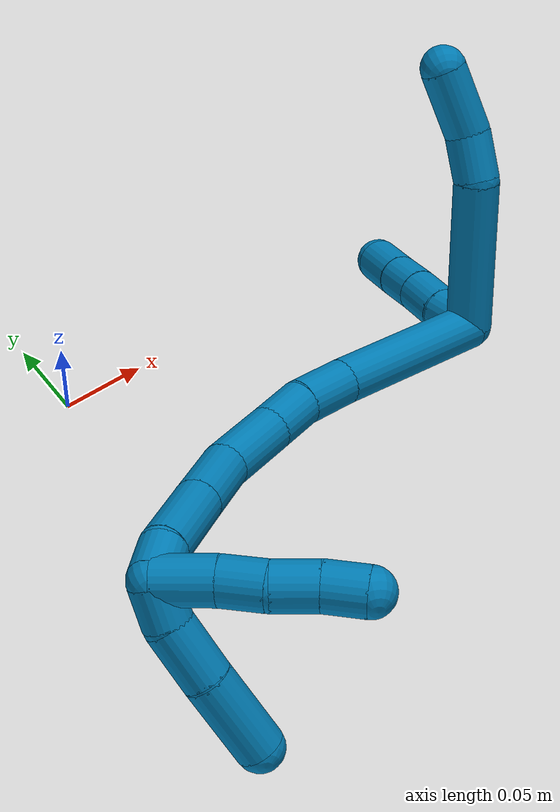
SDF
<sdf version="1.7">
 <world name="default">
  <model name="9">
   <static>0</static>
   <link name="9">
    <collision name="collision-cylinder-e_1_2_8">
     <pose>0.007394 0.040237 -0.01309 -1.88532 0.173003 -0.23768</pose>
     <geometry><cylinder><radius>0.0125</radius><length>0.085908</length></cylinder></geometry>
     <surface>
      <friction><ode><mu>1.16</mu><mu2>1.16</mu2><slip1>0</slip1><slip2>0</slip2></ode></friction>
      <contact><ode><kp>1e+06</kp><kd>1</kd><max_vel>0</max_vel><min_depth>0.001</min_depth></ode></contact>
     </surface>
    </collision>
    <visual name="visual-cylinder-e_1_2_8">
     <pose>0.007394 0.040237 -0.01309 -1.88532 0.173003 -0.23768</pose>
     <geometry><cylinder><radius>0.0125</radius><length>0.085908</length></cylinder></geometry>
     <material><ambient>0 0.490196 0.709804 1</ambient></material>
    </visual>
    <collision name="collision-cylinder-e_2_8_9">
     <pose>0.014872 0.091122 -0.033821 -2.19325 0.00638 -0.012431</pose>
     <geometry><cylinder><radius>0.0125</radius><length>0.026212</length></cylinder></geometry>
     <surface>
      <friction><ode><mu>1.16</mu><mu2>1.16</mu2><slip1>0</slip1><slip2>0</slip2></ode></friction>
      <contact><ode><kp>1e+06</kp><kd>1</kd><max_vel>0</max_vel><min_depth>0.001</min_depth></ode></contact>
     </surface>
    </collision>
    <visual name="visual-cylinder-e_2_8_9">
     <pose>0.014872 0.091122 -0.033821 -2.19325 0.00638 -0.012431</pose>
     <geometry><cylinder><radius>0.0125</radius><length>0.026212</length></cylinder></geometry>
     <material><ambient>0 0.490196 0.709804 1</ambient></material>
    </visual>
    <collision name="collision-cylinder-e_3_9_6">
     <pose>0.011197 0.118496 -0.049514 -2.01946 -0.199771 0.316283</pose>
     <geometry><cylinder><radius>0.0125</radius><length>0.037881</length></cylinder></geometry>
     <surface>
      <friction><ode><mu>1.16</mu><mu2>1.16</mu2><slip1>0</slip1><slip2>0</slip2></ode></friction>
      <contact><ode><kp>1e+06</kp><kd>1</kd><max_vel>0</max_vel><min_depth>0.001</min_depth></ode></contact>
     </surface>
    </collision>
    <visual name="visual-cylinder-e_3_9_6">
     <pose>0.011197 0.118496 -0.049514 -2.01946 -0.199771 0.316283</pose>
     <geometry><cylinder><radius>0.0125</radius><length>0.037881</length></cylinder></geometry>
     <material><ambient>0 0.490196 0.709804 1</ambient></material>
    </visual>
    <collision name="collision-cylinder-e_1_2_10">
     <pose>-0.004761 -0.002393 -0.010988 2.92717 -0.400512 -2.16653</pose>
     <geometry><cylinder><radius>0.0125</radius><length>0.024423</length></cylinder></geometry>
     <surface>
      <friction><ode><mu>1.16</mu><mu2>1.16</mu2><slip1>0</slip1><slip2>0</slip2></ode></friction>
      <contact><ode><kp>1e+06</kp><kd>1</kd><max_vel>0</max_vel><min_depth>0.001</min_depth></ode></contact>
     </surface>
    </collision>
    <visual name="visual-cylinder-e_1_2_10">
     <pose>-0.004761 -0.002393 -0.010988 2.92717 -0.400512 -2.16653</pose>
     <geometry><cylinder><radius>0.0125</radius><length>0.024423</length></cylinder></geometry>
     <material><ambient>0 0.490196 0.709804 1</ambient></material>
    </visual>
    <collision name="collision-cylinder-e_2_10_11">
     <pose>-0.012929 -0.007476 -0.034115 2.92353 -0.267443 -1.7755</pose>
     <geometry><cylinder><radius>0.0125</radius><length>0.025786</length></cylinder></geometry>
     <surface>
      <friction><ode><mu>1.16</mu><mu2>1.16</mu2><slip1>0</slip1><slip2>0</slip2></ode></friction>
      <contact><ode><kp>1e+06</kp><kd>1</kd><max_vel>0</max_vel><min_depth>0.001</min_depth></ode></contact>
     </surface>
    </collision>
    <visual name="visual-cylinder-e_2_10_11">
     <pose>-0.012929 -0.007476 -0.034115 2.92353 -0.267443 -1.7755</pose>
     <geometry><cylinder><radius>0.0125</radius><length>0.025786</length></cylinder></geometry>
     <material><ambient>0 0.490196 0.709804 1</ambient></material>
    </visual>
    <collision name="collision-cylinder-e_3_11_12">
     <pose>-0.019535 -0.012992 -0.056905 2.88218 -0.282494 -1.65699</pose>
     <geometry><cylinder><radius>0.0125</radius><length>0.022944</length></cylinder></geometry>
     <surface>
      <friction><ode><mu>1.16</mu><mu2>1.16</mu2><slip1>0</slip1><slip2>0</slip2></ode></friction>
      <contact><ode><kp>1e+06</kp><kd>1</kd><max_vel>0</max_vel><min_depth>0.001</min_depth></ode></contact>
     </surface>
    </collision>
    <visual name="visual-cylinder-e_3_11_12">
     <pose>-0.019535 -0.012992 -0.056905 2.88218 -0.282494 -1.65699</pose>
     <geometry><cylinder><radius>0.0125</radius><length>0.022944</length></cylinder></geometry>
     <material><ambient>0 0.490196 0.709804 1</ambient></material>
    </visual>
    <collision name="collision-cylinder-e_4_12_5">
     <pose>-0.025925 -0.019409 -0.080087 2.86255 -0.240165 -1.41965</pose>
     <geometry><cylinder><radius>0.0125</radius><length>0.026847</length></cylinder></geometry>
     <surface>
      <friction><ode><mu>1.16</mu><mu2>1.16</mu2><slip1>0</slip1><slip2>0</slip2></ode></friction>
      <contact><ode><kp>1e+06</kp><kd>1</kd><max_vel>0</max_vel><min_depth>0.001</min_depth></ode></contact>
     </surface>
    </collision>
    <visual name="visual-cylinder-e_4_12_5">
     <pose>-0.025925 -0.019409 -0.080087 2.86255 -0.240165 -1.41965</pose>
     <geometry><cylinder><radius>0.0125</radius><length>0.026847</length></cylinder></geometry>
     <material><ambient>0 0.490196 0.709804 1</ambient></material>
    </visual>
    <collision name="collision-cylinder-e_1_2_13">
     <pose>-0.040674 0.011315 0.020652 -0.501233 -1.04599 0.293074</pose>
     <geometry><cylinder><radius>0.0125</radius><length>0.093999</length></cylinder></geometry>
     <surface>
      <friction><ode><mu>1.16</mu><mu2>1.16</mu2><slip1>0</slip1><slip2>0</slip2></ode></friction>
      <contact><ode><kp>1e+06</kp><kd>1</kd><max_vel>0</max_vel><min_depth>0.001</min_depth></ode></contact>
     </surface>
    </collision>
    <visual name="visual-cylinder-e_1_2_13">
     <pose>-0.040674 0.011315 0.020652 -0.501233 -1.04599 0.293074</pose>
     <geometry><cylinder><radius>0.0125</radius><length>0.093999</length></cylinder></geometry>
     <material><ambient>0 0.490196 0.709804 1</ambient></material>
    </visual>
    <collision name="collision-cylinder-e_2_13_14">
     <pose>-0.094148 0.027009 0.049417 -0.4949 -0.946618 0.25733</pose>
     <geometry><cylinder><radius>0.0125</radius><length>0.031548</length></cylinder></geometry>
     <surface>
      <friction><ode><mu>1.16</mu><mu2>1.16</mu2><slip1>0</slip1><slip2>0</slip2></ode></friction>
      <contact><ode><kp>1e+06</kp><kd>1</kd><max_vel>0</max_vel><min_depth>0.001</min_depth></ode></contact>
     </surface>
    </collision>
    <visual name="visual-cylinder-e_2_13_14">
     <pose>-0.094148 0.027009 0.049417 -0.4949 -0.946618 0.25733</pose>
     <geometry><cylinder><radius>0.0125</radius><length>0.031548</length></cylinder></geometry>
     <material><ambient>0 0.490196 0.709804 1</ambient></material>
    </visual>
    <collision name="collision-cylinder-e_3_14_15">
     <pose>-0.116961 0.033691 0.066142 -0.261322 -0.84335 0.11776</pose>
     <geometry><cylinder><radius>0.0125</radius><length>0.026814</length></cylinder></geometry>
     <surface>
      <friction><ode><mu>1.16</mu><mu2>1.16</mu2><slip1>0</slip1><slip2>0</slip2></ode></friction>
      <contact><ode><kp>1e+06</kp><kd>1</kd><max_vel>0</max_vel><min_depth>0.001</min_depth></ode></contact>
     </surface>
    </collision>
    <visual name="visual-cylinder-e_3_14_15">
     <pose>-0.116961 0.033691 0.066142 -0.261322 -0.84335 0.11776</pose>
     <geometry><cylinder><radius>0.0125</radius><length>0.026814</length></cylinder></geometry>
     <material><ambient>0 0.490196 0.709804 1</ambient></material>
    </visual>
    <collision name="collision-cylinder-e_4_15_16">
     <pose>-0.14107 0.041222 0.08843 -0.365143 -0.766435 0.14859</pose>
     <geometry><cylinder><radius>0.0125</radius><length>0.040646</length></cylinder></geometry>
     <surface>
      <friction><ode><mu>1.16</mu><mu2>1.16</mu2><slip1>0</slip1><slip2>0</slip2></ode></friction>
      <contact><ode><kp>1e+06</kp><kd>1</kd><max_vel>0</max_vel><min_depth>0.001</min_depth></ode></contact>
     </surface>
    </collision>
    <visual name="visual-cylinder-e_4_15_16">
     <pose>-0.14107 0.041222 0.08843 -0.365143 -0.766435 0.14859</pose>
     <geometry><cylinder><radius>0.0125</radius><length>0.040646</length></cylinder></geometry>
     <material><ambient>0 0.490196 0.709804 1</ambient></material>
    </visual>
    <collision name="collision-cylinder-e_5_16_17">
     <pose>-0.164345 0.053461 0.117847 -0.418989 -0.489427 0.106088</pose>
     <geometry><cylinder><radius>0.0125</radius><length>0.039048</length></cylinder></geometry>
     <surface>
      <friction><ode><mu>1.16</mu><mu2>1.16</mu2><slip1>0</slip1><slip2>0</slip2></ode></friction>
      <contact><ode><kp>1e+06</kp><kd>1</kd><max_vel>0</max_vel><min_depth>0.001</min_depth></ode></contact>
     </surface>
    </collision>
    <visual name="visual-cylinder-e_5_16_17">
     <pose>-0.164345 0.053461 0.117847 -0.418989 -0.489427 0.106088</pose>
     <geometry><cylinder><radius>0.0125</radius><length>0.039048</length></cylinder></geometry>
     <material><ambient>0 0.490196 0.709804 1</ambient></material>
    </visual>
    <collision name="collision-cylinder-e_6_17_18">
     <pose>-0.184126 0.068976 0.15236 -0.425392 -0.475151 0.104495</pose>
     <geometry><cylinder><radius>0.0125</radius><length>0.046352</length></cylinder></geometry>
     <surface>
      <friction><ode><mu>1.16</mu><mu2>1.16</mu2><slip1>0</slip1><slip2>0</slip2></ode></friction>
      <contact><ode><kp>1e+06</kp><kd>1</kd><max_vel>0</max_vel><min_depth>0.001</min_depth></ode></contact>
     </surface>
    </collision>
    <visual name="visual-cylinder-e_6_17_18">
     <pose>-0.184126 0.068976 0.15236 -0.425392 -0.475151 0.104495</pose>
     <geometry><cylinder><radius>0.0125</radius><length>0.046352</length></cylinder></geometry>
     <material><ambient>0 0.490196 0.709804 1</ambient></material>
    </visual>
    <collision name="collision-cylinder-e_7_18_1">
     <pose>-0.19884 0.079175 0.18097 -0.170521 -0.390755 0.033825</pose>
     <geometry><cylinder><radius>0.0125</radius><length>0.021593</length></cylinder></geometry>
     <surface>
      <friction><ode><mu>1.16</mu><mu2>1.16</mu2><slip1>0</slip1><slip2>0</slip2></ode></friction>
      <contact><ode><kp>1e+06</kp><kd>1</kd><max_vel>0</max_vel><min_depth>0.001</min_depth></ode></contact>
     </surface>
    </collision>
    <visual name="visual-cylinder-e_7_18_1">
     <pose>-0.19884 0.079175 0.18097 -0.170521 -0.390755 0.033825</pose>
     <geometry><cylinder><radius>0.0125</radius><length>0.021593</length></cylinder></geometry>
     <material><ambient>0 0.490196 0.709804 1</ambient></material>
    </visual>
    <collision name="collision-cylinder-e_1_1_19">
     <pose>-0.188265 0.081105 0.195612 -0.049179 1.25432 -0.035647</pose>
     <geometry><cylinder><radius>0.0125</radius><length>0.030911</length></cylinder></geometry>
     <surface>
      <friction><ode><mu>1.16</mu><mu2>1.16</mu2><slip1>0</slip1><slip2>0</slip2></ode></friction>
      <contact><ode><kp>1e+06</kp><kd>1</kd><max_vel>0</max_vel><min_depth>0.001</min_depth></ode></contact>
     </surface>
    </collision>
    <visual name="visual-cylinder-e_1_1_19">
     <pose>-0.188265 0.081105 0.195612 -0.049179 1.25432 -0.035647</pose>
     <geometry><cylinder><radius>0.0125</radius><length>0.030911</length></cylinder></geometry>
     <material><ambient>0 0.490196 0.709804 1</ambient></material>
    </visual>
    <collision name="collision-cylinder-e_2_19_20">
     <pose>-0.163073 0.08135 0.205296 -0.001704 1.13589 -0.001087</pose>
     <geometry><cylinder><radius>0.0125</radius><length>0.023164</length></cylinder></geometry>
     <surface>
      <friction><ode><mu>1.16</mu><mu2>1.16</mu2><slip1>0</slip1><slip2>0</slip2></ode></friction>
      <contact><ode><kp>1e+06</kp><kd>1</kd><max_vel>0</max_vel><min_depth>0.001</min_depth></ode></contact>
     </surface>
    </collision>
    <visual name="visual-cylinder-e_2_19_20">
     <pose>-0.163073 0.08135 0.205296 -0.001704 1.13589 -0.001087</pose>
     <geometry><cylinder><radius>0.0125</radius><length>0.023164</length></cylinder></geometry>
     <material><ambient>0 0.490196 0.709804 1</ambient></material>
    </visual>
    <collision name="collision-cylinder-e_3_20_21">
     <pose>-0.14114 0.080611 0.213039 0.255337 1.31743 0.198073</pose>
     <geometry><cylinder><radius>0.0125</radius><length>0.023611</length></cylinder></geometry>
     <surface>
      <friction><ode><mu>1.16</mu><mu2>1.16</mu2><slip1>0</slip1><slip2>0</slip2></ode></friction>
      <contact><ode><kp>1e+06</kp><kd>1</kd><max_vel>0</max_vel><min_depth>0.001</min_depth></ode></contact>
     </surface>
    </collision>
    <visual name="visual-cylinder-e_3_20_21">
     <pose>-0.14114 0.080611 0.213039 0.255337 1.31743 0.198073</pose>
     <geometry><cylinder><radius>0.0125</radius><length>0.023611</length></cylinder></geometry>
     <material><ambient>0 0.490196 0.709804 1</ambient></material>
    </visual>
    <collision name="collision-cylinder-e_4_21_4">
     <pose>-0.119488 0.079289 0.220333 0.128896 1.15877 0.084402</pose>
     <geometry><cylinder><radius>0.0125</radius><length>0.022314</length></cylinder></geometry>
     <surface>
      <friction><ode><mu>1.16</mu><mu2>1.16</mu2><slip1>0</slip1><slip2>0</slip2></ode></friction>
      <contact><ode><kp>1e+06</kp><kd>1</kd><max_vel>0</max_vel><min_depth>0.001</min_depth></ode></contact>
     </surface>
    </collision>
    <visual name="visual-cylinder-e_4_21_4">
     <pose>-0.119488 0.079289 0.220333 0.128896 1.15877 0.084402</pose>
     <geometry><cylinder><radius>0.0125</radius><length>0.022314</length></cylinder></geometry>
     <material><ambient>0 0.490196 0.709804 1</ambient></material>
    </visual>
    <collision name="collision-cylinder-e_1_1_22">
     <pose>-0.201757 0.071579 0.196715 1.00443 0.108152 0.059436</pose>
     <geometry><cylinder><radius>0.0125</radius><length>0.022147</length></cylinder></geometry>
     <surface>
      <friction><ode><mu>1.16</mu><mu2>1.16</mu2><slip1>0</slip1><slip2>0</slip2></ode></friction>
      <contact><ode><kp>1e+06</kp><kd>1</kd><max_vel>0</max_vel><min_depth>0.001</min_depth></ode></contact>
     </surface>
    </collision>
    <visual name="visual-cylinder-e_1_1_22">
     <pose>-0.201757 0.071579 0.196715 1.00443 0.108152 0.059436</pose>
     <geometry><cylinder><radius>0.0125</radius><length>0.022147</length></cylinder></geometry>
     <material><ambient>0 0.490196 0.709804 1</ambient></material>
    </visual>
    <collision name="collision-cylinder-e_2_22_23">
     <pose>-0.19467 0.049312 0.210486 1.02593 0.370346 0.21024</pose>
     <geometry><cylinder><radius>0.0125</radius><length>0.032554</length></cylinder></geometry>
     <surface>
      <friction><ode><mu>1.16</mu><mu2>1.16</mu2><slip1>0</slip1><slip2>0</slip2></ode></friction>
      <contact><ode><kp>1e+06</kp><kd>1</kd><max_vel>0</max_vel><min_depth>0.001</min_depth></ode></contact>
     </surface>
    </collision>
    <visual name="visual-cylinder-e_2_22_23">
     <pose>-0.19467 0.049312 0.210486 1.02593 0.370346 0.21024</pose>
     <geometry><cylinder><radius>0.0125</radius><length>0.032554</length></cylinder></geometry>
     <material><ambient>0 0.490196 0.709804 1</ambient></material>
    </visual>
    <collision name="collision-cylinder-e_3_23_3">
     <pose>-0.180252 0.01742 0.227433 1.12316 0.385985 0.244678</pose>
     <geometry><cylinder><radius>0.0125</radius><length>0.045298</length></cylinder></geometry>
     <surface>
      <friction><ode><mu>1.16</mu><mu2>1.16</mu2><slip1>0</slip1><slip2>0</slip2></ode></friction>
      <contact><ode><kp>1e+06</kp><kd>1</kd><max_vel>0</max_vel><min_depth>0.001</min_depth></ode></contact>
     </surface>
    </collision>
    <visual name="visual-cylinder-e_3_23_3">
     <pose>-0.180252 0.01742 0.227433 1.12316 0.385985 0.244678</pose>
     <geometry><cylinder><radius>0.0125</radius><length>0.045298</length></cylinder></geometry>
     <material><ambient>0 0.490196 0.709804 1</ambient></material>
    </visual>
    <collision name="collision-sphere-3">
     <pose>-0.171725 -0.001495 0.236515 0 -0 0</pose>
     <geometry><sphere><radius>0.0125</radius></sphere></geometry>
     <surface>
      <friction><ode><mu>1.16</mu><mu2>1.16</mu2><slip1>0</slip1><slip2>0</slip2></ode></friction>
      <contact><ode><kp>1e+06</kp><kd>1</kd><max_vel>0</max_vel><min_depth>0.001</min_depth></ode></contact>
     </surface>
    </collision>
    <visual name="visual-sphere-3">
     <pose>-0.171725 -0.001495 0.236515 0 -0 0</pose>
     <geometry><sphere><radius>0.0125</radius></sphere></geometry>
     <material><ambient>0 0.490196 0.709804 1</ambient></material>
    </visual>
    <collision name="collision-sphere-23">
     <pose>-0.188779 0.036336 0.218351 0 -0 0</pose>
     <geometry><sphere><radius>0.0125</radius></sphere></geometry>
     <surface>
      <friction><ode><mu>1.16</mu><mu2>1.16</mu2><slip1>0</slip1><slip2>0</slip2></ode></friction>
      <contact><ode><kp>1e+06</kp><kd>1</kd><max_vel>0</max_vel><min_depth>0.001</min_depth></ode></contact>
     </surface>
    </collision>
    <visual name="visual-sphere-23">
     <pose>-0.188779 0.036336 0.218351 0 -0 0</pose>
     <geometry><sphere><radius>0.0125</radius></sphere></geometry>
     <material><ambient>0 0.490196 0.709804 1</ambient></material>
    </visual>
    <collision name="collision-sphere-22">
     <pose>-0.200562 0.062289 0.202622 0 -0 0</pose>
     <geometry><sphere><radius>0.0125</radius></sphere></geometry>
     <surface>
      <friction><ode><mu>1.16</mu><mu2>1.16</mu2><slip1>0</slip1><slip2>0</slip2></ode></friction>
      <contact><ode><kp>1e+06</kp><kd>1</kd><max_vel>0</max_vel><min_depth>0.001</min_depth></ode></contact>
     </surface>
    </collision>
    <visual name="visual-sphere-22">
     <pose>-0.200562 0.062289 0.202622 0 -0 0</pose>
     <geometry><sphere><radius>0.0125</radius></sphere></geometry>
     <material><ambient>0 0.490196 0.709804 1</ambient></material>
    </visual>
    <collision name="collision-sphere-4">
     <pose>-0.109265 0.078715 0.224764 0 -0 0</pose>
     <geometry><sphere><radius>0.0125</radius></sphere></geometry>
     <surface>
      <friction><ode><mu>1.16</mu><mu2>1.16</mu2><slip1>0</slip1><slip2>0</slip2></ode></friction>
      <contact><ode><kp>1e+06</kp><kd>1</kd><max_vel>0</max_vel><min_depth>0.001</min_depth></ode></contact>
     </surface>
    </collision>
    <visual name="visual-sphere-4">
     <pose>-0.109265 0.078715 0.224764 0 -0 0</pose>
     <geometry><sphere><radius>0.0125</radius></sphere></geometry>
     <material><ambient>0 0.490196 0.709804 1</ambient></material>
    </visual>
    <collision name="collision-sphere-21">
     <pose>-0.129712 0.079863 0.215902 0 -0 0</pose>
     <geometry><sphere><radius>0.0125</radius></sphere></geometry>
     <surface>
      <friction><ode><mu>1.16</mu><mu2>1.16</mu2><slip1>0</slip1><slip2>0</slip2></ode></friction>
      <contact><ode><kp>1e+06</kp><kd>1</kd><max_vel>0</max_vel><min_depth>0.001</min_depth></ode></contact>
     </surface>
    </collision>
    <visual name="visual-sphere-21">
     <pose>-0.129712 0.079863 0.215902 0 -0 0</pose>
     <geometry><sphere><radius>0.0125</radius></sphere></geometry>
     <material><ambient>0 0.490196 0.709804 1</ambient></material>
    </visual>
    <collision name="collision-sphere-20">
     <pose>-0.152569 0.081358 0.210176 0 -0 0</pose>
     <geometry><sphere><radius>0.0125</radius></sphere></geometry>
     <surface>
      <friction><ode><mu>1.16</mu><mu2>1.16</mu2><slip1>0</slip1><slip2>0</slip2></ode></friction>
      <contact><ode><kp>1e+06</kp><kd>1</kd><max_vel>0</max_vel><min_depth>0.001</min_depth></ode></contact>
     </surface>
    </collision>
    <visual name="visual-sphere-20">
     <pose>-0.152569 0.081358 0.210176 0 -0 0</pose>
     <geometry><sphere><radius>0.0125</radius></sphere></geometry>
     <material><ambient>0 0.490196 0.709804 1</ambient></material>
    </visual>
    <collision name="collision-sphere-11">
     <pose>-0.016337 -0.010166 -0.046256 0 -0 0</pose>
     <geometry><sphere><radius>0.0125</radius></sphere></geometry>
     <surface>
      <friction><ode><mu>1.16</mu><mu2>1.16</mu2><slip1>0</slip1><slip2>0</slip2></ode></friction>
      <contact><ode><kp>1e+06</kp><kd>1</kd><max_vel>0</max_vel><min_depth>0.001</min_depth></ode></contact>
     </surface>
    </collision>
    <visual name="visual-sphere-11">
     <pose>-0.016337 -0.010166 -0.046256 0 -0 0</pose>
     <geometry><sphere><radius>0.0125</radius></sphere></geometry>
     <material><ambient>0 0.490196 0.709804 1</ambient></material>
    </visual>
    <collision name="collision-sphere-10">
     <pose>-0.009522 -0.004785 -0.021975 0 -0 0</pose>
     <geometry><sphere><radius>0.0125</radius></sphere></geometry>
     <surface>
      <friction><ode><mu>1.16</mu><mu2>1.16</mu2><slip1>0</slip1><slip2>0</slip2></ode></friction>
      <contact><ode><kp>1e+06</kp><kd>1</kd><max_vel>0</max_vel><min_depth>0.001</min_depth></ode></contact>
     </surface>
    </collision>
    <visual name="visual-sphere-10">
     <pose>-0.009522 -0.004785 -0.021975 0 -0 0</pose>
     <geometry><sphere><radius>0.0125</radius></sphere></geometry>
     <material><ambient>0 0.490196 0.709804 1</ambient></material>
    </visual>
    <collision name="collision-sphere-6">
     <pose>0.007438 0.135222 -0.057566 0 -0 0</pose>
     <geometry><sphere><radius>0.0125</radius></sphere></geometry>
     <surface>
      <friction><ode><mu>1.16</mu><mu2>1.16</mu2><slip1>0</slip1><slip2>0</slip2></ode></friction>
      <contact><ode><kp>1e+06</kp><kd>1</kd><max_vel>0</max_vel><min_depth>0.001</min_depth></ode></contact>
     </surface>
    </collision>
    <visual name="visual-sphere-6">
     <pose>0.007438 0.135222 -0.057566 0 -0 0</pose>
     <geometry><sphere><radius>0.0125</radius></sphere></geometry>
     <material><ambient>0 0.490196 0.709804 1</ambient></material>
    </visual>
    <collision name="collision-sphere-9">
     <pose>0.014955 0.101769 -0.041462 0 -0 0</pose>
     <geometry><sphere><radius>0.0125</radius></sphere></geometry>
     <surface>
      <friction><ode><mu>1.16</mu><mu2>1.16</mu2><slip1>0</slip1><slip2>0</slip2></ode></friction>
      <contact><ode><kp>1e+06</kp><kd>1</kd><max_vel>0</max_vel><min_depth>0.001</min_depth></ode></contact>
     </surface>
    </collision>
    <visual name="visual-sphere-9">
     <pose>0.014955 0.101769 -0.041462 0 -0 0</pose>
     <geometry><sphere><radius>0.0125</radius></sphere></geometry>
     <material><ambient>0 0.490196 0.709804 1</ambient></material>
    </visual>
    <collision name="collision-sphere-2">
     <geometry><sphere><radius>0.0125</radius></sphere></geometry>
     <surface>
      <friction><ode><mu>1.16</mu><mu2>1.16</mu2><slip1>0</slip1><slip2>0</slip2></ode></friction>
      <contact><ode><kp>1e+06</kp><kd>1</kd><max_vel>0</max_vel><min_depth>0.001</min_depth></ode></contact>
     </surface>
    </collision>
    <visual name="visual-sphere-2">
     <geometry><sphere><radius>0.0125</radius></sphere></geometry>
     <material><ambient>0 0.490196 0.709804 1</ambient></material>
    </visual>
    <collision name="collision-sphere-19">
     <pose>-0.173577 0.081342 0.200416 0 -0 0</pose>
     <geometry><sphere><radius>0.0125</radius></sphere></geometry>
     <surface>
      <friction><ode><mu>1.16</mu><mu2>1.16</mu2><slip1>0</slip1><slip2>0</slip2></ode></friction>
      <contact><ode><kp>1e+06</kp><kd>1</kd><max_vel>0</max_vel><min_depth>0.001</min_depth></ode></contact>
     </surface>
    </collision>
    <visual name="visual-sphere-19">
     <pose>-0.173577 0.081342 0.200416 0 -0 0</pose>
     <geometry><sphere><radius>0.0125</radius></sphere></geometry>
     <material><ambient>0 0.490196 0.709804 1</ambient></material>
    </visual>
    <collision name="collision-sphere-8">
     <pose>0.014788 0.080474 -0.02618 0 -0 0</pose>
     <geometry><sphere><radius>0.0125</radius></sphere></geometry>
     <surface>
      <friction><ode><mu>1.16</mu><mu2>1.16</mu2><slip1>0</slip1><slip2>0</slip2></ode></friction>
      <contact><ode><kp>1e+06</kp><kd>1</kd><max_vel>0</max_vel><min_depth>0.001</min_depth></ode></contact>
     </surface>
    </collision>
    <visual name="visual-sphere-8">
     <pose>0.014788 0.080474 -0.02618 0 -0 0</pose>
     <geometry><sphere><radius>0.0125</radius></sphere></geometry>
     <material><ambient>0 0.490196 0.709804 1</ambient></material>
    </visual>
    <collision name="collision-sphere-12">
     <pose>-0.022732 -0.015818 -0.067553 0 -0 0</pose>
     <geometry><sphere><radius>0.0125</radius></sphere></geometry>
     <surface>
      <friction><ode><mu>1.16</mu><mu2>1.16</mu2><slip1>0</slip1><slip2>0</slip2></ode></friction>
      <contact><ode><kp>1e+06</kp><kd>1</kd><max_vel>0</max_vel><min_depth>0.001</min_depth></ode></contact>
     </surface>
    </collision>
    <visual name="visual-sphere-12">
     <pose>-0.022732 -0.015818 -0.067553 0 -0 0</pose>
     <geometry><sphere><radius>0.0125</radius></sphere></geometry>
     <material><ambient>0 0.490196 0.709804 1</ambient></material>
    </visual>
    <collision name="collision-sphere-5">
     <pose>-0.029118 -0.023 -0.092621 0 -0 0</pose>
     <geometry><sphere><radius>0.0125</radius></sphere></geometry>
     <surface>
      <friction><ode><mu>1.16</mu><mu2>1.16</mu2><slip1>0</slip1><slip2>0</slip2></ode></friction>
      <contact><ode><kp>1e+06</kp><kd>1</kd><max_vel>0</max_vel><min_depth>0.001</min_depth></ode></contact>
     </surface>
    </collision>
    <visual name="visual-sphere-5">
     <pose>-0.029118 -0.023 -0.092621 0 -0 0</pose>
     <geometry><sphere><radius>0.0125</radius></sphere></geometry>
     <material><ambient>0 0.490196 0.709804 1</ambient></material>
    </visual>
    <collision name="collision-sphere-13">
     <pose>-0.081349 0.022631 0.041304 0 -0 0</pose>
     <geometry><sphere><radius>0.0125</radius></sphere></geometry>
     <surface>
      <friction><ode><mu>1.16</mu><mu2>1.16</mu2><slip1>0</slip1><slip2>0</slip2></ode></friction>
      <contact><ode><kp>1e+06</kp><kd>1</kd><max_vel>0</max_vel><min_depth>0.001</min_depth></ode></contact>
     </surface>
    </collision>
    <visual name="visual-sphere-13">
     <pose>-0.081349 0.022631 0.041304 0 -0 0</pose>
     <geometry><sphere><radius>0.0125</radius></sphere></geometry>
     <material><ambient>0 0.490196 0.709804 1</ambient></material>
    </visual>
    <collision name="collision-sphere-14">
     <pose>-0.106948 0.031388 0.05753 0 -0 0</pose>
     <geometry><sphere><radius>0.0125</radius></sphere></geometry>
     <surface>
      <friction><ode><mu>1.16</mu><mu2>1.16</mu2><slip1>0</slip1><slip2>0</slip2></ode></friction>
      <contact><ode><kp>1e+06</kp><kd>1</kd><max_vel>0</max_vel><min_depth>0.001</min_depth></ode></contact>
     </surface>
    </collision>
    <visual name="visual-sphere-14">
     <pose>-0.106948 0.031388 0.05753 0 -0 0</pose>
     <geometry><sphere><radius>0.0125</radius></sphere></geometry>
     <material><ambient>0 0.490196 0.709804 1</ambient></material>
    </visual>
    <collision name="collision-sphere-15">
     <pose>-0.126975 0.035994 0.074755 0 -0 0</pose>
     <geometry><sphere><radius>0.0125</radius></sphere></geometry>
     <surface>
      <friction><ode><mu>1.16</mu><mu2>1.16</mu2><slip1>0</slip1><slip2>0</slip2></ode></friction>
      <contact><ode><kp>1e+06</kp><kd>1</kd><max_vel>0</max_vel><min_depth>0.001</min_depth></ode></contact>
     </surface>
    </collision>
    <visual name="visual-sphere-15">
     <pose>-0.126975 0.035994 0.074755 0 -0 0</pose>
     <geometry><sphere><radius>0.0125</radius></sphere></geometry>
     <material><ambient>0 0.490196 0.709804 1</ambient></material>
    </visual>
    <collision name="collision-sphere-16">
     <pose>-0.155166 0.04645 0.102106 0 -0 0</pose>
     <geometry><sphere><radius>0.0125</radius></sphere></geometry>
     <surface>
      <friction><ode><mu>1.16</mu><mu2>1.16</mu2><slip1>0</slip1><slip2>0</slip2></ode></friction>
      <contact><ode><kp>1e+06</kp><kd>1</kd><max_vel>0</max_vel><min_depth>0.001</min_depth></ode></contact>
     </surface>
    </collision>
    <visual name="visual-sphere-16">
     <pose>-0.155166 0.04645 0.102106 0 -0 0</pose>
     <geometry><sphere><radius>0.0125</radius></sphere></geometry>
     <material><ambient>0 0.490196 0.709804 1</ambient></material>
    </visual>
    <collision name="collision-sphere-17">
     <pose>-0.173523 0.060471 0.133588 0 -0 0</pose>
     <geometry><sphere><radius>0.0125</radius></sphere></geometry>
     <surface>
      <friction><ode><mu>1.16</mu><mu2>1.16</mu2><slip1>0</slip1><slip2>0</slip2></ode></friction>
      <contact><ode><kp>1e+06</kp><kd>1</kd><max_vel>0</max_vel><min_depth>0.001</min_depth></ode></contact>
     </surface>
    </collision>
    <visual name="visual-sphere-17">
     <pose>-0.173523 0.060471 0.133588 0 -0 0</pose>
     <geometry><sphere><radius>0.0125</radius></sphere></geometry>
     <material><ambient>0 0.490196 0.709804 1</ambient></material>
    </visual>
    <collision name="collision-sphere-18">
     <pose>-0.194728 0.077481 0.171132 0 -0 0</pose>
     <geometry><sphere><radius>0.0125</radius></sphere></geometry>
     <surface>
      <friction><ode><mu>1.16</mu><mu2>1.16</mu2><slip1>0</slip1><slip2>0</slip2></ode></friction>
      <contact><ode><kp>1e+06</kp><kd>1</kd><max_vel>0</max_vel><min_depth>0.001</min_depth></ode></contact>
     </surface>
    </collision>
    <visual name="visual-sphere-18">
     <pose>-0.194728 0.077481 0.171132 0 -0 0</pose>
     <geometry><sphere><radius>0.0125</radius></sphere></geometry>
     <material><ambient>0 0.490196 0.709804 1</ambient></material>
    </visual>
    <collision name="collision-sphere-1">
     <pose>-0.202952 0.080869 0.190808 0 -0 0</pose>
     <geometry><sphere><radius>0.0125</radius></sphere></geometry>
     <surface>
      <friction><ode><mu>1.16</mu><mu2>1.16</mu2><slip1>0</slip1><slip2>0</slip2></ode></friction>
      <contact><ode><kp>1e+06</kp><kd>1</kd><max_vel>0</max_vel><min_depth>0.001</min_depth></ode></contact>
     </surface>
    </collision>
    <visual name="visual-sphere-1">
     <pose>-0.202952 0.080869 0.190808 0 -0 0</pose>
     <geometry><sphere><radius>0.0125</radius></sphere></geometry>
     <material><ambient>0 0.490196 0.709804 1</ambient></material>
    </visual>
    <inertial>
     <pose>-0.092827 0.043728 0.077612 0 -0 0</pose>
     <mass>0.75</mass>
     <inertia><ixx>0.000128</ixx><ixy>0</ixy><ixz>0</ixz><iyy>0.000107</iyy><iyz>0</iyz><izz>-1e-06</izz></inertia>
    </inertial>
   </link>
   <pose>0.186517 -0.132965 0.072209 1.46444 -0.084748 -0.395203</pose>
  </model>
 </world>
</sdf>
